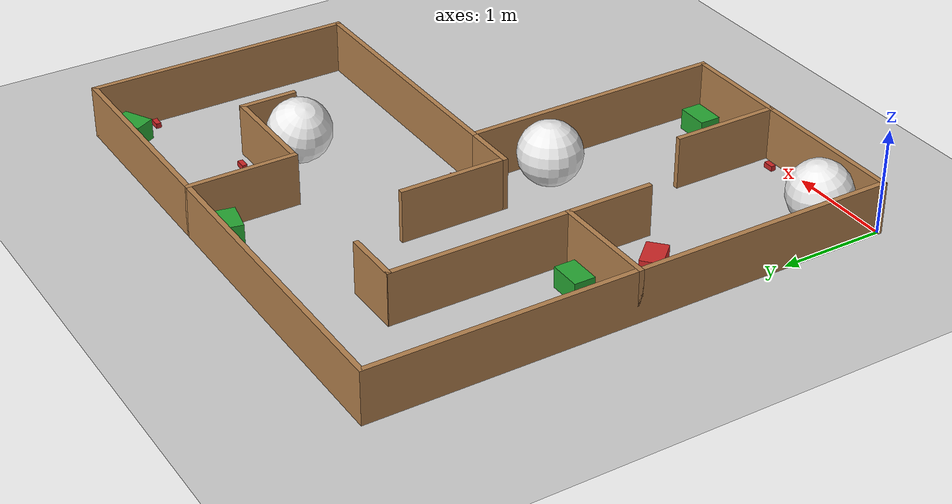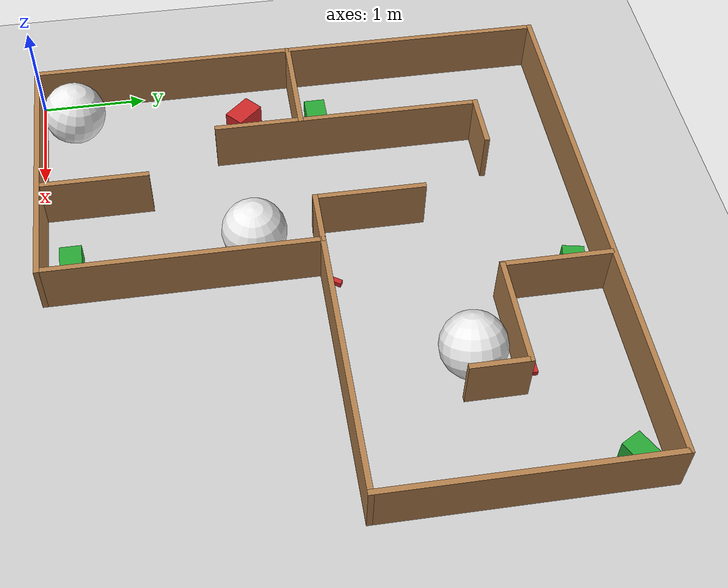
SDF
<sdf version="1.6">
 <world name="default">
  <light name="sun" type="directional">
   <pose>0 0 10 0 -0 0</pose>
   <diffuse>0.8 0.8 0.8 1</diffuse>
   <specular>0.2 0.2 0.2 1</specular>
   <attenuation>
    <range>1000</range>
    <constant>0.9</constant>
    <linear>0.01</linear>
    <quadratic>0.001</quadratic>
   </attenuation>
   <direction>-0.5 0.1 -0.9</direction>
  </light>
  <model name="ground_plane">
   <static>1</static>
   <link name="link">
    <collision name="collision">
     <geometry><plane><normal>0 0 1</normal><size>100 100</size></plane></geometry>
     <surface>
      <contact><collide_bitmask>65535</collide_bitmask></contact>
      <friction><ode><mu>100</mu><mu2>50</mu2></ode></friction>
     </surface>
    </collision>
    <visual name="visual">
     <cast_shadows>0</cast_shadows>
     <geometry><plane><normal>0 0 1</normal><size>100 100</size></plane></geometry>
     <material>
      <script><uri>file://media/materials/scripts/gazebo.material</uri><name>Gazebo/Grey</name></script>
     </material>
    </visual>
   </link>
  </model>
  <gravity>0 0 -9.8</gravity>
  <magnetic_field>6e-06 2.3e-05 -4.2e-05</magnetic_field>
  <atmosphere type="adiabatic"/>
  <physics name="default_physics" default="0" type="ode">
   <max_step_size>0.001</max_step_size>
   <real_time_factor>1</real_time_factor>
   <real_time_update_rate>1000</real_time_update_rate>
  </physics>
  <scene><ambient>0.4 0.4 0.4 1</ambient><background>0.7 0.7 0.7 1</background><shadows>1</shadows></scene>
  <audio><device>default</device></audio>
  <spherical_coordinates>
   <surface_model>EARTH_WGS84</surface_model>
   <latitude_deg>0</latitude_deg>
   <longitude_deg>0</longitude_deg>
   <elevation>0</elevation>
   <heading_deg>0</heading_deg>
  </spherical_coordinates>
  <model name="ar_group_project_2">
   <link name="Wall_0">
    <pose>-2.5 0 0 0 -0 1.5708</pose>
    <visual name="Wall_0_Visual">
     <pose>0 0 0.25 0 -0 0</pose>
     <geometry><box><size>5.05 0.05 0.5</size></box></geometry>
     <material>
      <script><uri>file://media/materials/scripts/gazebo.material</uri><name>Gazebo/Wood</name></script>
      <ambient>1 1 1 1</ambient>
     </material>
     <meta><layer>0</layer></meta>
    </visual>
    <collision name="Wall_0_Collision">
     <pose>0 0 0.25 0 -0 0</pose>
     <geometry><box><size>5.05 0.05 0.5</size></box></geometry>
     <surface>
      <friction>
       <ode><mu>1</mu><mu2>1</mu2><fdir1>0 0 0</fdir1><slip1>0</slip1><slip2>0</slip2></ode>
       <torsional>
        <coefficient>1</coefficient>
        <patch_radius>0</patch_radius>
        <surface_radius>0</surface_radius>
        <use_patch_radius>1</use_patch_radius>
        <ode><slip>0</slip></ode>
       </torsional>
      </friction>
      <bounce><restitution_coefficient>0</restitution_coefficient><threshold>1e+06</threshold></bounce>
      <contact>
       <collide_without_contact>0</collide_without_contact>
       <collide_without_contact_bitmask>1</collide_without_contact_bitmask>
       <collide_bitmask>1</collide_bitmask>
       <ode>
        <soft_cfm>0</soft_cfm>
        <soft_erp>0.2</soft_erp>
        <kp>1e+13</kp>
        <kd>1</kd>
        <max_vel>0.01</max_vel>
        <min_depth>0</min_depth>
       </ode>
       <bullet>
        <split_impulse>1</split_impulse>
        <split_impulse_penetration_threshold>-0.01</split_impulse_penetration_threshold>
        <soft_cfm>0</soft_cfm>
        <soft_erp>0.2</soft_erp>
        <kp>1e+13</kp>
        <kd>1</kd>
       </bullet>
      </contact>
     </surface>
    </collision>
   </link>
   <link name="Wall_10">
    <pose>0 -1.25 0 0 0 -1.5708</pose>
    <visual name="Wall_10_Visual">
     <pose>0 0 0.25 0 -0 0</pose>
     <geometry><box><size>2.55 0.05 0.5</size></box></geometry>
     <material>
      <script><uri>file://media/materials/scripts/gazebo.material</uri><name>Gazebo/Wood</name></script>
      <ambient>1 1 1 1</ambient>
     </material>
     <meta><layer>0</layer></meta>
    </visual>
    <collision name="Wall_10_Collision">
     <pose>0 0 0.25 0 -0 0</pose>
     <geometry><box><size>2.55 0.05 0.5</size></box></geometry>
     <surface>
      <friction>
       <ode><mu>1</mu><mu2>1</mu2><fdir1>0 0 0</fdir1><slip1>0</slip1><slip2>0</slip2></ode>
       <torsional>
        <coefficient>1</coefficient>
        <patch_radius>0</patch_radius>
        <surface_radius>0</surface_radius>
        <use_patch_radius>1</use_patch_radius>
        <ode><slip>0</slip></ode>
       </torsional>
      </friction>
      <bounce><restitution_coefficient>0</restitution_coefficient><threshold>1e+06</threshold></bounce>
      <contact>
       <collide_without_contact>0</collide_without_contact>
       <collide_without_contact_bitmask>1</collide_without_contact_bitmask>
       <collide_bitmask>1</collide_bitmask>
       <ode>
        <soft_cfm>0</soft_cfm>
        <soft_erp>0.2</soft_erp>
        <kp>1e+13</kp>
        <kd>1</kd>
        <max_vel>0.01</max_vel>
        <min_depth>0</min_depth>
       </ode>
       <bullet>
        <split_impulse>1</split_impulse>
        <split_impulse_penetration_threshold>-0.01</split_impulse_penetration_threshold>
        <soft_cfm>0</soft_cfm>
        <soft_erp>0.2</soft_erp>
        <kp>1e+13</kp>
        <kd>1</kd>
       </bullet>
      </contact>
     </surface>
    </collision>
   </link>
   <link name="Wall_13">
    <pose>-1.25 -2.5 0 0 -0 3.14159</pose>
    <visual name="Wall_13_Visual">
     <pose>0 0 0.25 0 -0 0</pose>
     <geometry><box><size>2.55 0.05 0.5</size></box></geometry>
     <material>
      <script><uri>file://media/materials/scripts/gazebo.material</uri><name>Gazebo/Wood</name></script>
      <ambient>1 1 1 1</ambient>
     </material>
     <meta><layer>0</layer></meta>
    </visual>
    <collision name="Wall_13_Collision">
     <pose>0 0 0.25 0 -0 0</pose>
     <geometry><box><size>2.55 0.05 0.5</size></box></geometry>
     <surface>
      <friction>
       <ode><mu>1</mu><mu2>1</mu2><fdir1>0 0 0</fdir1><slip1>0</slip1><slip2>0</slip2></ode>
       <torsional>
        <coefficient>1</coefficient>
        <patch_radius>0</patch_radius>
        <surface_radius>0</surface_radius>
        <use_patch_radius>1</use_patch_radius>
        <ode><slip>0</slip></ode>
       </torsional>
      </friction>
      <bounce><restitution_coefficient>0</restitution_coefficient><threshold>1e+06</threshold></bounce>
      <contact>
       <collide_without_contact>0</collide_without_contact>
       <collide_without_contact_bitmask>1</collide_without_contact_bitmask>
       <collide_bitmask>1</collide_bitmask>
       <ode>
        <soft_cfm>0</soft_cfm>
        <soft_erp>0.2</soft_erp>
        <kp>1e+13</kp>
        <kd>1</kd>
        <max_vel>0.01</max_vel>
        <min_depth>0</min_depth>
       </ode>
       <bullet>
        <split_impulse>1</split_impulse>
        <split_impulse_penetration_threshold>-0.01</split_impulse_penetration_threshold>
        <soft_cfm>0</soft_cfm>
        <soft_erp>0.2</soft_erp>
        <kp>1e+13</kp>
        <kd>1</kd>
       </bullet>
      </contact>
     </surface>
    </collision>
   </link>
   <link name="Wall_15">
    <pose>-2 0 0 0 -0 0</pose>
    <visual name="Wall_15_Visual">
     <pose>0 0 0.25 0 -0 0</pose>
     <geometry><box><size>1.05 0.05 0.5</size></box></geometry>
     <material>
      <script><uri>file://media/materials/scripts/gazebo.material</uri><name>Gazebo/Wood</name></script>
      <ambient>1 1 1 1</ambient>
     </material>
     <meta><layer>0</layer></meta>
    </visual>
    <collision name="Wall_15_Collision">
     <pose>0 0 0.25 0 -0 0</pose>
     <geometry><box><size>1.05 0.05 0.5</size></box></geometry>
     <surface>
      <friction>
       <ode><mu>1</mu><mu2>1</mu2><fdir1>0 0 0</fdir1><slip1>0</slip1><slip2>0</slip2></ode>
       <torsional>
        <coefficient>1</coefficient>
        <patch_radius>0</patch_radius>
        <surface_radius>0</surface_radius>
        <use_patch_radius>1</use_patch_radius>
        <ode><slip>0</slip></ode>
       </torsional>
      </friction>
      <bounce><restitution_coefficient>0</restitution_coefficient><threshold>1e+06</threshold></bounce>
      <contact>
       <collide_without_contact>0</collide_without_contact>
       <collide_without_contact_bitmask>1</collide_without_contact_bitmask>
       <collide_bitmask>1</collide_bitmask>
       <ode>
        <soft_cfm>0</soft_cfm>
        <soft_erp>0.2</soft_erp>
        <kp>1e+13</kp>
        <kd>1</kd>
        <max_vel>0.01</max_vel>
        <min_depth>0</min_depth>
       </ode>
       <bullet>
        <split_impulse>1</split_impulse>
        <split_impulse_penetration_threshold>-0.01</split_impulse_penetration_threshold>
        <soft_cfm>0</soft_cfm>
        <soft_erp>0.2</soft_erp>
        <kp>1e+13</kp>
        <kd>1</kd>
       </bullet>
      </contact>
     </surface>
    </collision>
   </link>
   <link name="Wall_17">
    <pose>-1.5 0.450102 0 0 -0 1.5708</pose>
    <inertial>
     <mass>1</mass>
     <inertia><ixx>1</ixx><ixy>0</ixy><ixz>0</ixz><iyy>1</iyy><iyz>0</iyz><izz>1</izz></inertia>
    </inertial>
    <visual name="Wall_17_Visual">
     <pose>0 0 0.25 0 -0 0</pose>
     <geometry><box><size>2.55 0.05 0.5</size></box></geometry>
     <material>
      <script><uri>file://media/materials/scripts/gazebo.material</uri><name>Gazebo/Wood</name></script>
      <ambient>1 1 1 1</ambient>
      <shader type="vertex"><normal_map>__default__</normal_map></shader>
     </material>
     <meta><layer>0</layer></meta>
    </visual>
    <collision name="Wall_17_Collision">
     <pose>0 0 0.25 0 -0 0</pose>
     <geometry><box><size>2.55 0.05 0.5</size></box></geometry>
     <surface>
      <friction>
       <ode><mu>1</mu><mu2>1</mu2><fdir1>0 0 0</fdir1><slip1>0</slip1><slip2>0</slip2></ode>
       <torsional>
        <coefficient>1</coefficient>
        <patch_radius>0</patch_radius>
        <surface_radius>0</surface_radius>
        <use_patch_radius>1</use_patch_radius>
        <ode><slip>0</slip></ode>
       </torsional>
      </friction>
      <bounce><restitution_coefficient>0</restitution_coefficient><threshold>1e+06</threshold></bounce>
      <contact>
       <collide_without_contact>0</collide_without_contact>
       <collide_without_contact_bitmask>1</collide_without_contact_bitmask>
       <collide_bitmask>1</collide_bitmask>
       <ode>
        <soft_cfm>0</soft_cfm>
        <soft_erp>0.2</soft_erp>
        <kp>1e+13</kp>
        <kd>1</kd>
        <max_vel>0.01</max_vel>
        <min_depth>0</min_depth>
       </ode>
       <bullet>
        <split_impulse>1</split_impulse>
        <split_impulse_penetration_threshold>-0.01</split_impulse_penetration_threshold>
        <soft_cfm>0</soft_cfm>
        <soft_erp>0.2</soft_erp>
        <kp>1e+13</kp>
        <kd>1</kd>
       </bullet>
      </contact>
     </surface>
    </collision>
   </link>
   <link name="Wall_19">
    <pose>-1.25 1.70667 0 0 -0 0</pose>
    <visual name="Wall_19_Visual">
     <pose>0 0 0.25 0 -0 0</pose>
     <geometry><box><size>0.55 0.05 0.5</size></box></geometry>
     <material>
      <script><uri>file://media/materials/scripts/gazebo.material</uri><name>Gazebo/Wood</name></script>
      <ambient>1 1 1 1</ambient>
     </material>
     <meta><layer>0</layer></meta>
    </visual>
    <collision name="Wall_19_Collision">
     <pose>0 0 0.25 0 -0 0</pose>
     <geometry><box><size>0.55 0.05 0.5</size></box></geometry>
     <surface>
      <friction>
       <ode><mu>1</mu><mu2>1</mu2><fdir1>0 0 0</fdir1><slip1>0</slip1><slip2>0</slip2></ode>
       <torsional>
        <coefficient>1</coefficient>
        <patch_radius>0</patch_radius>
        <surface_radius>0</surface_radius>
        <use_patch_radius>1</use_patch_radius>
        <ode><slip>0</slip></ode>
       </torsional>
      </friction>
      <bounce><restitution_coefficient>0</restitution_coefficient><threshold>1e+06</threshold></bounce>
      <contact>
       <collide_without_contact>0</collide_without_contact>
       <collide_without_contact_bitmask>1</collide_without_contact_bitmask>
       <collide_bitmask>1</collide_bitmask>
       <ode>
        <soft_cfm>0</soft_cfm>
        <soft_erp>0.2</soft_erp>
        <kp>1e+13</kp>
        <kd>1</kd>
        <max_vel>0.01</max_vel>
        <min_depth>0</min_depth>
       </ode>
       <bullet>
        <split_impulse>1</split_impulse>
        <split_impulse_penetration_threshold>-0.01</split_impulse_penetration_threshold>
        <soft_cfm>0</soft_cfm>
        <soft_erp>0.2</soft_erp>
        <kp>1e+13</kp>
        <kd>1</kd>
       </bullet>
      </contact>
     </surface>
    </collision>
   </link>
   <link name="Wall_21">
    <pose>0.5 2 0 0 0 -1.5708</pose>
    <visual name="Wall_21_Visual">
     <pose>0 0 0.25 0 -0 0</pose>
     <geometry><box><size>1.05 0.05 0.5</size></box></geometry>
     <material>
      <script><uri>file://media/materials/scripts/gazebo.material</uri><name>Gazebo/Wood</name></script>
      <ambient>1 1 1 1</ambient>
     </material>
     <meta><layer>0</layer></meta>
    </visual>
    <collision name="Wall_21_Collision">
     <pose>0 0 0.25 0 -0 0</pose>
     <geometry><box><size>1.05 0.05 0.5</size></box></geometry>
     <surface>
      <friction>
       <ode><mu>1</mu><mu2>1</mu2><fdir1>0 0 0</fdir1><slip1>0</slip1><slip2>0</slip2></ode>
       <torsional>
        <coefficient>1</coefficient>
        <patch_radius>0</patch_radius>
        <surface_radius>0</surface_radius>
        <use_patch_radius>1</use_patch_radius>
        <ode><slip>0</slip></ode>
       </torsional>
      </friction>
      <bounce><restitution_coefficient>0</restitution_coefficient><threshold>1e+06</threshold></bounce>
      <contact>
       <collide_without_contact>0</collide_without_contact>
       <collide_without_contact_bitmask>1</collide_without_contact_bitmask>
       <collide_bitmask>1</collide_bitmask>
       <ode>
        <soft_cfm>0</soft_cfm>
        <soft_erp>0.2</soft_erp>
        <kp>1e+13</kp>
        <kd>1</kd>
        <max_vel>0.01</max_vel>
        <min_depth>0</min_depth>
       </ode>
       <bullet>
        <split_impulse>1</split_impulse>
        <split_impulse_penetration_threshold>-0.01</split_impulse_penetration_threshold>
        <soft_cfm>0</soft_cfm>
        <soft_erp>0.2</soft_erp>
        <kp>1e+13</kp>
        <kd>1</kd>
       </bullet>
      </contact>
     </surface>
    </collision>
   </link>
   <link name="Wall_22">
    <pose>1 1.5 0 0 -0 0</pose>
    <visual name="Wall_22_Visual">
     <pose>0 0 0.25 0 -0 0</pose>
     <geometry><box><size>1.05 0.05 0.5</size></box></geometry>
     <material>
      <script><uri>file://media/materials/scripts/gazebo.material</uri><name>Gazebo/Wood</name></script>
      <ambient>1 1 1 1</ambient>
     </material>
     <meta><layer>0</layer></meta>
    </visual>
    <collision name="Wall_22_Collision">
     <pose>0 0 0.25 0 -0 0</pose>
     <geometry><box><size>1.05 0.05 0.5</size></box></geometry>
     <surface>
      <friction>
       <ode><mu>1</mu><mu2>1</mu2><fdir1>0 0 0</fdir1><slip1>0</slip1><slip2>0</slip2></ode>
       <torsional>
        <coefficient>1</coefficient>
        <patch_radius>0</patch_radius>
        <surface_radius>0</surface_radius>
        <use_patch_radius>1</use_patch_radius>
        <ode><slip>0</slip></ode>
       </torsional>
      </friction>
      <bounce><restitution_coefficient>0</restitution_coefficient><threshold>1e+06</threshold></bounce>
      <contact>
       <collide_without_contact>0</collide_without_contact>
       <collide_without_contact_bitmask>1</collide_without_contact_bitmask>
       <collide_bitmask>1</collide_bitmask>
       <ode>
        <soft_cfm>0</soft_cfm>
        <soft_erp>0.2</soft_erp>
        <kp>1e+13</kp>
        <kd>1</kd>
        <max_vel>0.01</max_vel>
        <min_depth>0</min_depth>
       </ode>
       <bullet>
        <split_impulse>1</split_impulse>
        <split_impulse_penetration_threshold>-0.01</split_impulse_penetration_threshold>
        <soft_cfm>0</soft_cfm>
        <soft_erp>0.2</soft_erp>
        <kp>1e+13</kp>
        <kd>1</kd>
       </bullet>
      </contact>
     </surface>
    </collision>
   </link>
   <link name="Wall_23">
    <pose>1.5 1.25 0 0 0 -1.5708</pose>
    <visual name="Wall_23_Visual">
     <pose>0 0 0.25 0 -0 0</pose>
     <geometry><box><size>0.55 0.05 0.5</size></box></geometry>
     <material>
      <script><uri>file://media/materials/scripts/gazebo.material</uri><name>Gazebo/Wood</name></script>
      <ambient>1 1 1 1</ambient>
     </material>
     <meta><layer>0</layer></meta>
    </visual>
    <collision name="Wall_23_Collision">
     <pose>0 0 0.25 0 -0 0</pose>
     <geometry><box><size>0.55 0.05 0.5</size></box></geometry>
     <surface>
      <friction>
       <ode><mu>1</mu><mu2>1</mu2><fdir1>0 0 0</fdir1><slip1>0</slip1><slip2>0</slip2></ode>
       <torsional>
        <coefficient>1</coefficient>
        <patch_radius>0</patch_radius>
        <surface_radius>0</surface_radius>
        <use_patch_radius>1</use_patch_radius>
        <ode><slip>0</slip></ode>
       </torsional>
      </friction>
      <bounce><restitution_coefficient>0</restitution_coefficient><threshold>1e+06</threshold></bounce>
      <contact>
       <collide_without_contact>0</collide_without_contact>
       <collide_without_contact_bitmask>1</collide_without_contact_bitmask>
       <collide_bitmask>1</collide_bitmask>
       <ode>
        <soft_cfm>0</soft_cfm>
        <soft_erp>0.2</soft_erp>
        <kp>1e+13</kp>
        <kd>1</kd>
        <max_vel>0.01</max_vel>
        <min_depth>0</min_depth>
       </ode>
       <bullet>
        <split_impulse>1</split_impulse>
        <split_impulse_penetration_threshold>-0.01</split_impulse_penetration_threshold>
        <soft_cfm>0</soft_cfm>
        <soft_erp>0.2</soft_erp>
        <kp>1e+13</kp>
        <kd>1</kd>
       </bullet>
      </contact>
     </surface>
    </collision>
   </link>
   <link name="Wall_25">
    <pose>-1 -2 0 0 -0 1.5708</pose>
    <visual name="Wall_25_Visual">
     <pose>0 0 0.25 0 -0 0</pose>
     <geometry><box><size>1.05 0.05 0.5</size></box></geometry>
     <material>
      <script><uri>file://media/materials/scripts/gazebo.material</uri><name>Gazebo/Wood</name></script>
      <ambient>1 1 1 1</ambient>
     </material>
     <meta><layer>0</layer></meta>
    </visual>
    <collision name="Wall_25_Collision">
     <pose>0 0 0.25 0 -0 0</pose>
     <geometry><box><size>1.05 0.05 0.5</size></box></geometry>
     <surface>
      <friction>
       <ode><mu>1</mu><mu2>1</mu2><fdir1>0 0 0</fdir1><slip1>0</slip1><slip2>0</slip2></ode>
       <torsional>
        <coefficient>1</coefficient>
        <patch_radius>0</patch_radius>
        <surface_radius>0</surface_radius>
        <use_patch_radius>1</use_patch_radius>
        <ode><slip>0</slip></ode>
       </torsional>
      </friction>
      <bounce><restitution_coefficient>0</restitution_coefficient><threshold>1e+06</threshold></bounce>
      <contact>
       <collide_without_contact>0</collide_without_contact>
       <collide_without_contact_bitmask>1</collide_without_contact_bitmask>
       <collide_bitmask>1</collide_bitmask>
       <ode>
        <soft_cfm>0</soft_cfm>
        <soft_erp>0.2</soft_erp>
        <kp>1e+13</kp>
        <kd>1</kd>
        <max_vel>0.01</max_vel>
        <min_depth>0</min_depth>
       </ode>
       <bullet>
        <split_impulse>1</split_impulse>
        <split_impulse_penetration_threshold>-0.01</split_impulse_penetration_threshold>
        <soft_cfm>0</soft_cfm>
        <soft_erp>0.2</soft_erp>
        <kp>1e+13</kp>
        <kd>1</kd>
       </bullet>
      </contact>
     </surface>
    </collision>
   </link>
   <link name="Wall_27">
    <pose>-0.25 0 0 0 -0 3.14159</pose>
    <visual name="Wall_27_Visual">
     <pose>0 0 0.25 0 -0 0</pose>
     <geometry><box><size>0.55 0.05 0.5</size></box></geometry>
     <material>
      <script><uri>file://media/materials/scripts/gazebo.material</uri><name>Gazebo/Wood</name></script>
      <ambient>1 1 1 1</ambient>
     </material>
     <meta><layer>0</layer></meta>
    </visual>
    <collision name="Wall_27_Collision">
     <pose>0 0 0.25 0 -0 0</pose>
     <geometry><box><size>0.55 0.05 0.5</size></box></geometry>
     <surface>
      <friction>
       <ode><mu>1</mu><mu2>1</mu2><fdir1>0 0 0</fdir1><slip1>0</slip1><slip2>0</slip2></ode>
       <torsional>
        <coefficient>1</coefficient>
        <patch_radius>0</patch_radius>
        <surface_radius>0</surface_radius>
        <use_patch_radius>1</use_patch_radius>
        <ode><slip>0</slip></ode>
       </torsional>
      </friction>
      <bounce><restitution_coefficient>0</restitution_coefficient><threshold>1e+06</threshold></bounce>
      <contact>
       <collide_without_contact>0</collide_without_contact>
       <collide_without_contact_bitmask>1</collide_without_contact_bitmask>
       <collide_bitmask>1</collide_bitmask>
       <ode>
        <soft_cfm>0</soft_cfm>
        <soft_erp>0.2</soft_erp>
        <kp>1e+13</kp>
        <kd>1</kd>
        <max_vel>0.01</max_vel>
        <min_depth>0</min_depth>
       </ode>
       <bullet>
        <split_impulse>1</split_impulse>
        <split_impulse_penetration_threshold>-0.01</split_impulse_penetration_threshold>
        <soft_cfm>0</soft_cfm>
        <soft_erp>0.2</soft_erp>
        <kp>1e+13</kp>
        <kd>1</kd>
       </bullet>
      </contact>
     </surface>
    </collision>
   </link>
   <link name="Wall_28">
    <pose>-0.5 0.5 0 0 -0 1.5708</pose>
    <visual name="Wall_28_Visual">
     <pose>0 0 0.25 0 -0 0</pose>
     <geometry><box><size>1.05 0.05 0.5</size></box></geometry>
     <material>
      <script><uri>file://media/materials/scripts/gazebo.material</uri><name>Gazebo/Wood</name></script>
      <ambient>1 1 1 1</ambient>
     </material>
     <meta><layer>0</layer></meta>
    </visual>
    <collision name="Wall_28_Collision">
     <pose>0 0 0.25 0 -0 0</pose>
     <geometry><box><size>1.05 0.05 0.5</size></box></geometry>
     <surface>
      <friction>
       <ode><mu>1</mu><mu2>1</mu2><fdir1>0 0 0</fdir1><slip1>0</slip1><slip2>0</slip2></ode>
       <torsional>
        <coefficient>1</coefficient>
        <patch_radius>0</patch_radius>
        <surface_radius>0</surface_radius>
        <use_patch_radius>1</use_patch_radius>
        <ode><slip>0</slip></ode>
       </torsional>
      </friction>
      <bounce><restitution_coefficient>0</restitution_coefficient><threshold>1e+06</threshold></bounce>
      <contact>
       <collide_without_contact>0</collide_without_contact>
       <collide_without_contact_bitmask>1</collide_without_contact_bitmask>
       <collide_bitmask>1</collide_bitmask>
       <ode>
        <soft_cfm>0</soft_cfm>
        <soft_erp>0.2</soft_erp>
        <kp>1e+13</kp>
        <kd>1</kd>
        <max_vel>0.01</max_vel>
        <min_depth>0</min_depth>
       </ode>
       <bullet>
        <split_impulse>1</split_impulse>
        <split_impulse_penetration_threshold>-0.01</split_impulse_penetration_threshold>
        <soft_cfm>0</soft_cfm>
        <soft_erp>0.2</soft_erp>
        <kp>1e+13</kp>
        <kd>1</kd>
       </bullet>
      </contact>
     </surface>
    </collision>
   </link>
   <link name="Wall_4">
    <pose>0 2.5 0 0 -0 0</pose>
    <visual name="Wall_4_Visual">
     <pose>0 0 0.25 0 -0 0</pose>
     <geometry><box><size>5.05 0.05 0.5</size></box></geometry>
     <material>
      <script><uri>file://media/materials/scripts/gazebo.material</uri><name>Gazebo/Wood</name></script>
      <ambient>1 1 1 1</ambient>
     </material>
     <meta><layer>0</layer></meta>
    </visual>
    <collision name="Wall_4_Collision">
     <pose>0 0 0.25 0 -0 0</pose>
     <geometry><box><size>5.05 0.05 0.5</size></box></geometry>
     <surface>
      <friction>
       <ode><mu>1</mu><mu2>1</mu2><fdir1>0 0 0</fdir1><slip1>0</slip1><slip2>0</slip2></ode>
       <torsional>
        <coefficient>1</coefficient>
        <patch_radius>0</patch_radius>
        <surface_radius>0</surface_radius>
        <use_patch_radius>1</use_patch_radius>
        <ode><slip>0</slip></ode>
       </torsional>
      </friction>
      <bounce><restitution_coefficient>0</restitution_coefficient><threshold>1e+06</threshold></bounce>
      <contact>
       <collide_without_contact>0</collide_without_contact>
       <collide_without_contact_bitmask>1</collide_without_contact_bitmask>
       <collide_bitmask>1</collide_bitmask>
       <ode>
        <soft_cfm>0</soft_cfm>
        <soft_erp>0.2</soft_erp>
        <kp>1e+13</kp>
        <kd>1</kd>
        <max_vel>0.01</max_vel>
        <min_depth>0</min_depth>
       </ode>
       <bullet>
        <split_impulse>1</split_impulse>
        <split_impulse_penetration_threshold>-0.01</split_impulse_penetration_threshold>
        <soft_cfm>0</soft_cfm>
        <soft_erp>0.2</soft_erp>
        <kp>1e+13</kp>
        <kd>1</kd>
       </bullet>
      </contact>
     </surface>
    </collision>
   </link>
   <link name="Wall_6">
    <pose>2.5 1.25 0 0 0 -1.5708</pose>
    <visual name="Wall_6_Visual">
     <pose>0 0 0.25 0 -0 0</pose>
     <geometry><box><size>2.55 0.05 0.5</size></box></geometry>
     <material>
      <script><uri>file://media/materials/scripts/gazebo.material</uri><name>Gazebo/Wood</name></script>
      <ambient>1 1 1 1</ambient>
     </material>
     <meta><layer>0</layer></meta>
    </visual>
    <collision name="Wall_6_Collision">
     <pose>0 0 0.25 0 -0 0</pose>
     <geometry><box><size>2.55 0.05 0.5</size></box></geometry>
     <surface>
      <friction>
       <ode><mu>1</mu><mu2>1</mu2><fdir1>0 0 0</fdir1><slip1>0</slip1><slip2>0</slip2></ode>
       <torsional>
        <coefficient>1</coefficient>
        <patch_radius>0</patch_radius>
        <surface_radius>0</surface_radius>
        <use_patch_radius>1</use_patch_radius>
        <ode><slip>0</slip></ode>
       </torsional>
      </friction>
      <bounce><restitution_coefficient>0</restitution_coefficient><threshold>1e+06</threshold></bounce>
      <contact>
       <collide_without_contact>0</collide_without_contact>
       <collide_without_contact_bitmask>1</collide_without_contact_bitmask>
       <collide_bitmask>1</collide_bitmask>
       <ode>
        <soft_cfm>0</soft_cfm>
        <soft_erp>0.2</soft_erp>
        <kp>1e+13</kp>
        <kd>1</kd>
        <max_vel>0.01</max_vel>
        <min_depth>0</min_depth>
       </ode>
       <bullet>
        <split_impulse>1</split_impulse>
        <split_impulse_penetration_threshold>-0.01</split_impulse_penetration_threshold>
        <soft_cfm>0</soft_cfm>
        <soft_erp>0.2</soft_erp>
        <kp>1e+13</kp>
        <kd>1</kd>
       </bullet>
      </contact>
     </surface>
    </collision>
   </link>
   <link name="Wall_8">
    <pose>1.25 0 0 0 -0 3.14159</pose>
    <visual name="Wall_8_Visual">
     <pose>0 0 0.25 0 -0 0</pose>
     <geometry><box><size>2.55 0.05 0.5</size></box></geometry>
     <material>
      <script><uri>file://media/materials/scripts/gazebo.material</uri><name>Gazebo/Wood</name></script>
      <ambient>1 1 1 1</ambient>
     </material>
     <meta><layer>0</layer></meta>
    </visual>
    <collision name="Wall_8_Collision">
     <pose>0 0 0.25 0 -0 0</pose>
     <geometry><box><size>2.55 0.05 0.5</size></box></geometry>
     <surface>
      <friction>
       <ode><mu>1</mu><mu2>1</mu2><fdir1>0 0 0</fdir1><slip1>0</slip1><slip2>0</slip2></ode>
       <torsional>
        <coefficient>1</coefficient>
        <patch_radius>0</patch_radius>
        <surface_radius>0</surface_radius>
        <use_patch_radius>1</use_patch_radius>
        <ode><slip>0</slip></ode>
       </torsional>
      </friction>
      <bounce><restitution_coefficient>0</restitution_coefficient><threshold>1e+06</threshold></bounce>
      <contact>
       <collide_without_contact>0</collide_without_contact>
       <collide_without_contact_bitmask>1</collide_without_contact_bitmask>
       <collide_bitmask>1</collide_bitmask>
       <ode>
        <soft_cfm>0</soft_cfm>
        <soft_erp>0.2</soft_erp>
        <kp>1e+13</kp>
        <kd>1</kd>
        <max_vel>0.01</max_vel>
        <min_depth>0</min_depth>
       </ode>
       <bullet>
        <split_impulse>1</split_impulse>
        <split_impulse_penetration_threshold>-0.01</split_impulse_penetration_threshold>
        <soft_cfm>0</soft_cfm>
        <soft_erp>0.2</soft_erp>
        <kp>1e+13</kp>
        <kd>1</kd>
       </bullet>
      </contact>
     </surface>
    </collision>
   </link>
   <static>1</static>
   <pose>2.5 2.5 0 0 -0 0</pose>
  </model>
  <model name="brick">
   <link name="link">
    <inertial>
     <mass>1</mass>
     <inertia>
      <ixx>0.166667</ixx>
      <ixy>0</ixy>
      <ixz>0</ixz>
      <iyy>0.166667</iyy>
      <iyz>0</iyz>
      <izz>0.166667</izz>
     </inertia>
    </inertial>
    <visual name="visual">
     <geometry><box><size>0.3 0.2 0.2</size></box></geometry>
     <material>
      <script><name>Gazebo/Red</name><uri>file://media/materials/scripts/gazebo.material</uri></script>
     </material>
    </visual>
    <collision name="collision">
     <geometry><box><size>0.3 0.2 0.2</size></box></geometry>
     <surface>
      <friction>
       <ode><mu>1</mu><mu2>1</mu2><fdir1>0 0 0</fdir1><slip1>0</slip1><slip2>0</slip2></ode>
       <torsional>
        <coefficient>1</coefficient>
        <patch_radius>0</patch_radius>
        <surface_radius>0</surface_radius>
        <use_patch_radius>1</use_patch_radius>
        <ode><slip>0</slip></ode>
       </torsional>
      </friction>
      <bounce><restitution_coefficient>0</restitution_coefficient><threshold>1e+06</threshold></bounce>
      <contact>
       <collide_without_contact>0</collide_without_contact>
       <collide_without_contact_bitmask>1</collide_without_contact_bitmask>
       <collide_bitmask>1</collide_bitmask>
       <ode>
        <soft_cfm>0</soft_cfm>
        <soft_erp>0.2</soft_erp>
        <kp>1e+13</kp>
        <kd>1</kd>
        <max_vel>0.01</max_vel>
        <min_depth>0</min_depth>
       </ode>
       <bullet>
        <split_impulse>1</split_impulse>
        <split_impulse_penetration_threshold>-0.01</split_impulse_penetration_threshold>
        <soft_cfm>0</soft_cfm>
        <soft_erp>0.2</soft_erp>
        <kp>1e+13</kp>
        <kd>1</kd>
       </bullet>
      </contact>
     </surface>
    </collision>
   </link>
   <static>0</static>
   <pose>0.497482 1.98674 0.099999 4e-06 -6e-06 -0.834343</pose>
  </model>
  <model name="brick_decoy">
   <link name="link">
    <inertial>
     <mass>1</mass>
     <inertia>
      <ixx>0.166667</ixx>
      <ixy>0</ixy>
      <ixz>0</ixz>
      <iyy>0.166667</iyy>
      <iyz>0</iyz>
      <izz>0.166667</izz>
     </inertia>
    </inertial>
    <visual name="visual">
     <geometry><box><size>0.3 0.2 0.2</size></box></geometry>
     <material>
      <script><name>Gazebo/Green</name><uri>file://media/materials/scripts/gazebo.material</uri></script>
     </material>
    </visual>
    <collision name="collision">
     <geometry><box><size>0.3 0.2 0.2</size></box></geometry>
     <surface>
      <friction>
       <ode><mu>1</mu><mu2>1</mu2><fdir1>0 0 0</fdir1><slip1>0</slip1><slip2>0</slip2></ode>
       <torsional>
        <coefficient>1</coefficient>
        <patch_radius>0</patch_radius>
        <surface_radius>0</surface_radius>
        <use_patch_radius>1</use_patch_radius>
        <ode><slip>0</slip></ode>
       </torsional>
      </friction>
      <bounce><restitution_coefficient>0</restitution_coefficient><threshold>1e+06</threshold></bounce>
      <contact>
       <collide_without_contact>0</collide_without_contact>
       <collide_without_contact_bitmask>1</collide_without_contact_bitmask>
       <collide_bitmask>1</collide_bitmask>
       <ode>
        <soft_cfm>0</soft_cfm>
        <soft_erp>0.2</soft_erp>
        <kp>1e+13</kp>
        <kd>1</kd>
        <max_vel>0.01</max_vel>
        <min_depth>0</min_depth>
       </ode>
       <bullet>
        <split_impulse>1</split_impulse>
        <split_impulse_penetration_threshold>-0.01</split_impulse_penetration_threshold>
        <soft_cfm>0</soft_cfm>
        <soft_erp>0.2</soft_erp>
        <kp>1e+13</kp>
        <kd>1</kd>
       </bullet>
      </contact>
     </surface>
    </collision>
   </link>
   <static>0</static>
   <pose>2.16867 0.254295 0.1 0 -0 0</pose>
  </model>
  <model name="brick_white_sphere">
   <link name="link">
    <inertial>
     <mass>1</mass>
     <inertia>
      <ixx>0.166667</ixx>
      <ixy>0</ixy>
      <ixz>0</ixz>
      <iyy>0.166667</iyy>
      <iyz>0</iyz>
      <izz>0.166667</izz>
     </inertia>
    </inertial>
    <visual name="visual">
     <geometry><sphere><radius>0.3</radius></sphere></geometry>
     <material>
      <script><name>Gazebo/White</name><uri>file://media/materials/scripts/gazebo.material</uri></script>
     </material>
    </visual>
    <collision name="collision">
     <geometry><sphere><radius>0.3</radius></sphere></geometry>
     <surface>
      <friction>
       <ode><mu>1</mu><mu2>1</mu2><fdir1>0 0 0</fdir1><slip1>0</slip1><slip2>0</slip2></ode>
       <torsional>
        <coefficient>1</coefficient>
        <patch_radius>0</patch_radius>
        <surface_radius>0</surface_radius>
        <use_patch_radius>1</use_patch_radius>
        <ode><slip>0</slip></ode>
       </torsional>
      </friction>
      <bounce><restitution_coefficient>0</restitution_coefficient><threshold>1e+06</threshold></bounce>
      <contact>
       <collide_without_contact>0</collide_without_contact>
       <collide_without_contact_bitmask>1</collide_without_contact_bitmask>
       <collide_bitmask>1</collide_bitmask>
       <ode>
        <soft_cfm>0</soft_cfm>
        <soft_erp>0.2</soft_erp>
        <kp>1e+13</kp>
        <kd>1</kd>
        <max_vel>0.01</max_vel>
        <min_depth>0</min_depth>
       </ode>
       <bullet>
        <split_impulse>1</split_impulse>
        <split_impulse_penetration_threshold>-0.01</split_impulse_penetration_threshold>
        <soft_cfm>0</soft_cfm>
        <soft_erp>0.2</soft_erp>
        <kp>1e+13</kp>
        <kd>1</kd>
       </bullet>
      </contact>
     </surface>
    </collision>
   </link>
   <static>0</static>
   <pose>2.15433 1.92158 0.3 0 -0 0</pose>
  </model>
  <model name="brick_small">
   <link name="link">
    <inertial>
     <mass>1</mass>
     <inertia>
      <ixx>0.166667</ixx>
      <ixy>0</ixy>
      <ixz>0</ixz>
      <iyy>0.166667</iyy>
      <iyz>0</iyz>
      <izz>0.166667</izz>
     </inertia>
    </inertial>
    <visual name="visual">
     <geometry><box><size>0.1 0.05 0.05</size></box></geometry>
     <material>
      <script><name>Gazebo/Red</name><uri>file://media/materials/scripts/gazebo.material</uri></script>
     </material>
    </visual>
    <collision name="collision">
     <geometry><box><size>0.1 0.05 0.05</size></box></geometry>
     <surface>
      <friction>
       <ode><mu>1</mu><mu2>1</mu2><fdir1>0 0 0</fdir1><slip1>0</slip1><slip2>0</slip2></ode>
       <torsional>
        <coefficient>1</coefficient>
        <patch_radius>0</patch_radius>
        <surface_radius>0</surface_radius>
        <use_patch_radius>1</use_patch_radius>
        <ode><slip>0</slip></ode>
       </torsional>
      </friction>
      <bounce><restitution_coefficient>0</restitution_coefficient><threshold>1e+06</threshold></bounce>
      <contact>
       <collide_without_contact>0</collide_without_contact>
       <collide_without_contact_bitmask>1</collide_without_contact_bitmask>
       <collide_bitmask>1</collide_bitmask>
       <ode>
        <soft_cfm>0</soft_cfm>
        <soft_erp>0.2</soft_erp>
        <kp>1e+13</kp>
        <kd>1</kd>
        <max_vel>0.01</max_vel>
        <min_depth>0</min_depth>
       </ode>
       <bullet>
        <split_impulse>1</split_impulse>
        <split_impulse_penetration_threshold>-0.01</split_impulse_penetration_threshold>
        <soft_cfm>0</soft_cfm>
        <soft_erp>0.2</soft_erp>
        <kp>1e+13</kp>
        <kd>1</kd>
       </bullet>
      </contact>
     </surface>
    </collision>
   </link>
   <static>0</static>
   <pose>3.80084 4.13155 0.025001 2e-06 1.9e-05 -2e-06</pose>
  </model>
  <model name="brick_white_sphere_0">
   <link name="link">
    <inertial>
     <mass>1</mass>
     <inertia>
      <ixx>0.166667</ixx>
      <ixy>0</ixy>
      <ixz>0</ixz>
      <iyy>0.166667</iyy>
      <iyz>0</iyz>
      <izz>0.166667</izz>
     </inertia>
    </inertial>
    <visual name="visual">
     <geometry><sphere><radius>0.3</radius></sphere></geometry>
     <material>
      <script><name>Gazebo/White</name><uri>file://media/materials/scripts/gazebo.material</uri></script>
     </material>
    </visual>
    <collision name="collision">
     <geometry><sphere><radius>0.3</radius></sphere></geometry>
     <surface>
      <friction>
       <ode><mu>1</mu><mu2>1</mu2><fdir1>0 0 0</fdir1><slip1>0</slip1><slip2>0</slip2></ode>
       <torsional>
        <coefficient>1</coefficient>
        <patch_radius>0</patch_radius>
        <surface_radius>0</surface_radius>
        <use_patch_radius>1</use_patch_radius>
        <ode><slip>0</slip></ode>
       </torsional>
      </friction>
      <bounce><restitution_coefficient>0</restitution_coefficient><threshold>1e+06</threshold></bounce>
      <contact>
       <collide_without_contact>0</collide_without_contact>
       <collide_without_contact_bitmask>1</collide_without_contact_bitmask>
       <collide_bitmask>1</collide_bitmask>
       <ode>
        <soft_cfm>0</soft_cfm>
        <soft_erp>0.2</soft_erp>
        <kp>1e+13</kp>
        <kd>1</kd>
        <max_vel>0.01</max_vel>
        <min_depth>0</min_depth>
       </ode>
       <bullet>
        <split_impulse>1</split_impulse>
        <split_impulse_penetration_threshold>-0.01</split_impulse_penetration_threshold>
        <soft_cfm>0</soft_cfm>
        <soft_erp>0.2</soft_erp>
        <kp>1e+13</kp>
        <kd>1</kd>
       </bullet>
      </contact>
     </surface>
    </collision>
   </link>
   <static>0</static>
   <pose>0.397783 0.333234 0.3 -0.212896 1e-06 -0</pose>
  </model>
  <model name="brick_small_0">
   <link name="link">
    <inertial>
     <mass>1</mass>
     <inertia>
      <ixx>0.166667</ixx>
      <ixy>0</ixy>
      <ixz>0</ixz>
      <iyy>0.166667</iyy>
      <iyz>0</iyz>
      <izz>0.166667</izz>
     </inertia>
    </inertial>
    <visual name="visual">
     <geometry><box><size>0.1 0.05 0.05</size></box></geometry>
     <material>
      <script><name>Gazebo/Red</name><uri>file://media/materials/scripts/gazebo.material</uri></script>
     </material>
    </visual>
    <collision name="collision">
     <geometry><box><size>0.1 0.05 0.05</size></box></geometry>
     <surface>
      <friction>
       <ode><mu>1</mu><mu2>1</mu2><fdir1>0 0 0</fdir1><slip1>0</slip1><slip2>0</slip2></ode>
       <torsional>
        <coefficient>1</coefficient>
        <patch_radius>0</patch_radius>
        <surface_radius>0</surface_radius>
        <use_patch_radius>1</use_patch_radius>
        <ode><slip>0</slip></ode>
       </torsional>
      </friction>
      <bounce><restitution_coefficient>0</restitution_coefficient><threshold>1e+06</threshold></bounce>
      <contact>
       <collide_without_contact>0</collide_without_contact>
       <collide_without_contact_bitmask>1</collide_without_contact_bitmask>
       <collide_bitmask>1</collide_bitmask>
       <ode>
        <soft_cfm>0</soft_cfm>
        <soft_erp>0.2</soft_erp>
        <kp>1e+13</kp>
        <kd>1</kd>
        <max_vel>0.01</max_vel>
        <min_depth>0</min_depth>
       </ode>
       <bullet>
        <split_impulse>1</split_impulse>
        <split_impulse_penetration_threshold>-0.01</split_impulse_penetration_threshold>
        <soft_cfm>0</soft_cfm>
        <soft_erp>0.2</soft_erp>
        <kp>1e+13</kp>
        <kd>1</kd>
       </bullet>
      </contact>
     </surface>
    </collision>
   </link>
   <static>0</static>
   <pose>2.63249 2.60355 0.025 1e-06 -1e-05 1.00002</pose>
  </model>
  <model name="brick_decoy_0">
   <link name="link">
    <inertial>
     <mass>1</mass>
     <inertia>
      <ixx>0.166667</ixx>
      <ixy>0</ixy>
      <ixz>0</ixz>
      <iyy>0.166667</iyy>
      <iyz>0</iyz>
      <izz>0.166667</izz>
     </inertia>
    </inertial>
    <visual name="visual">
     <geometry><box><size>0.3 0.2 0.2</size></box></geometry>
     <material>
      <script><name>Gazebo/Green</name><uri>file://media/materials/scripts/gazebo.material</uri></script>
     </material>
    </visual>
    <collision name="collision">
     <geometry><box><size>0.3 0.2 0.2</size></box></geometry>
     <surface>
      <friction>
       <ode><mu>1</mu><mu2>1</mu2><fdir1>0 0 0</fdir1><slip1>0</slip1><slip2>0</slip2></ode>
       <torsional>
        <coefficient>1</coefficient>
        <patch_radius>0</patch_radius>
        <surface_radius>0</surface_radius>
        <use_patch_radius>1</use_patch_radius>
        <ode><slip>0</slip></ode>
       </torsional>
      </friction>
      <bounce><restitution_coefficient>0</restitution_coefficient><threshold>1e+06</threshold></bounce>
      <contact>
       <collide_without_contact>0</collide_without_contact>
       <collide_without_contact_bitmask>1</collide_without_contact_bitmask>
       <collide_bitmask>1</collide_bitmask>
       <ode>
        <soft_cfm>0</soft_cfm>
        <soft_erp>0.2</soft_erp>
        <kp>1e+13</kp>
        <kd>1</kd>
        <max_vel>0.01</max_vel>
        <min_depth>0</min_depth>
       </ode>
       <bullet>
        <split_impulse>1</split_impulse>
        <split_impulse_penetration_threshold>-0.01</split_impulse_penetration_threshold>
        <soft_cfm>0</soft_cfm>
        <soft_erp>0.2</soft_erp>
        <kp>1e+13</kp>
        <kd>1</kd>
       </bullet>
      </contact>
     </surface>
    </collision>
   </link>
   <static>0</static>
   <pose>4.79071 4.75743 0.099999 4e-06 -6e-06 0.499975</pose>
  </model>
  <model name="brick_decoy_1">
   <link name="link">
    <inertial>
     <mass>1</mass>
     <inertia>
      <ixx>0.166667</ixx>
      <ixy>0</ixy>
      <ixz>0</ixz>
      <iyy>0.166667</iyy>
      <iyz>0</iyz>
      <izz>0.166667</izz>
     </inertia>
    </inertial>
    <visual name="visual">
     <geometry><box><size>0.3 0.2 0.2</size></box></geometry>
     <material>
      <script><name>Gazebo/Green</name><uri>file://media/materials/scripts/gazebo.material</uri></script>
     </material>
    </visual>
    <collision name="collision">
     <geometry><box><size>0.3 0.2 0.2</size></box></geometry>
     <surface>
      <friction>
       <ode><mu>1</mu><mu2>1</mu2><fdir1>0 0 0</fdir1><slip1>0</slip1><slip2>0</slip2></ode>
       <torsional>
        <coefficient>1</coefficient>
        <patch_radius>0</patch_radius>
        <surface_radius>0</surface_radius>
        <use_patch_radius>1</use_patch_radius>
        <ode><slip>0</slip></ode>
       </torsional>
      </friction>
      <bounce><restitution_coefficient>0</restitution_coefficient><threshold>1e+06</threshold></bounce>
      <contact>
       <collide_without_contact>0</collide_without_contact>
       <collide_without_contact_bitmask>1</collide_without_contact_bitmask>
       <collide_bitmask>1</collide_bitmask>
       <ode>
        <soft_cfm>0</soft_cfm>
        <soft_erp>0.2</soft_erp>
        <kp>1e+13</kp>
        <kd>1</kd>
        <max_vel>0.01</max_vel>
        <min_depth>0</min_depth>
       </ode>
       <bullet>
        <split_impulse>1</split_impulse>
        <split_impulse_penetration_threshold>-0.01</split_impulse_penetration_threshold>
        <soft_cfm>0</soft_cfm>
        <soft_erp>0.2</soft_erp>
        <kp>1e+13</kp>
        <kd>1</kd>
       </bullet>
      </contact>
     </surface>
    </collision>
   </link>
   <static>0</static>
   <pose>2.80845 4.73892 0.1 0 0 -0.193411</pose>
  </model>
  <model name="brick_small_1">
   <link name="link">
    <inertial>
     <mass>1</mass>
     <inertia>
      <ixx>0.166667</ixx>
      <ixy>0</ixy>
      <ixz>0</ixz>
      <iyy>0.166667</iyy>
      <iyz>0</iyz>
      <izz>0.166667</izz>
     </inertia>
    </inertial>
    <visual name="visual">
     <geometry><box><size>0.1 0.05 0.05</size></box></geometry>
     <material>
      <script><name>Gazebo/Red</name><uri>file://media/materials/scripts/gazebo.material</uri></script>
     </material>
    </visual>
    <collision name="collision">
     <geometry><box><size>0.1 0.05 0.05</size></box></geometry>
     <surface>
      <friction>
       <ode><mu>1</mu><mu2>1</mu2><fdir1>0 0 0</fdir1><slip1>0</slip1><slip2>0</slip2></ode>
       <torsional>
        <coefficient>1</coefficient>
        <patch_radius>0</patch_radius>
        <surface_radius>0</surface_radius>
        <use_patch_radius>1</use_patch_radius>
        <ode><slip>0</slip></ode>
       </torsional>
      </friction>
      <bounce><restitution_coefficient>0</restitution_coefficient><threshold>1e+06</threshold></bounce>
      <contact>
       <collide_without_contact>0</collide_without_contact>
       <collide_without_contact_bitmask>1</collide_without_contact_bitmask>
       <collide_bitmask>1</collide_bitmask>
       <ode>
        <soft_cfm>0</soft_cfm>
        <soft_erp>0.2</soft_erp>
        <kp>1e+13</kp>
        <kd>1</kd>
        <max_vel>0.01</max_vel>
        <min_depth>0</min_depth>
       </ode>
       <bullet>
        <split_impulse>1</split_impulse>
        <split_impulse_penetration_threshold>-0.01</split_impulse_penetration_threshold>
        <soft_cfm>0</soft_cfm>
        <soft_erp>0.2</soft_erp>
        <kp>1e+13</kp>
        <kd>1</kd>
       </bullet>
      </contact>
     </surface>
    </collision>
   </link>
   <static>0</static>
   <pose>1.31599 0.110003 0.025001 2e-06 -1.3e-05 -1e-06</pose>
  </model>
  <model name="brick_decoy_2">
   <link name="link">
    <inertial>
     <mass>1</mass>
     <inertia>
      <ixx>0.166667</ixx>
      <ixy>0</ixy>
      <ixz>0</ixz>
      <iyy>0.166667</iyy>
      <iyz>0</iyz>
      <izz>0.166667</izz>
     </inertia>
    </inertial>
    <visual name="visual">
     <geometry><box><size>0.3 0.2 0.2</size></box></geometry>
     <material>
      <script><name>Gazebo/Green</name><uri>file://media/materials/scripts/gazebo.material</uri></script>
     </material>
    </visual>
    <collision name="collision">
     <geometry><box><size>0.3 0.2 0.2</size></box></geometry>
     <surface>
      <friction>
       <ode><mu>1</mu><mu2>1</mu2><fdir1>0 0 0</fdir1><slip1>0</slip1><slip2>0</slip2></ode>
       <torsional>
        <coefficient>1</coefficient>
        <patch_radius>0</patch_radius>
        <surface_radius>0</surface_radius>
        <use_patch_radius>1</use_patch_radius>
        <ode><slip>0</slip></ode>
       </torsional>
      </friction>
      <bounce><restitution_coefficient>0</restitution_coefficient><threshold>1e+06</threshold></bounce>
      <contact>
       <collide_without_contact>0</collide_without_contact>
       <collide_without_contact_bitmask>1</collide_without_contact_bitmask>
       <collide_bitmask>1</collide_bitmask>
       <ode>
        <soft_cfm>0</soft_cfm>
        <soft_erp>0.2</soft_erp>
        <kp>1e+13</kp>
        <kd>1</kd>
        <max_vel>0.01</max_vel>
        <min_depth>0</min_depth>
       </ode>
       <bullet>
        <split_impulse>1</split_impulse>
        <split_impulse_penetration_threshold>-0.01</split_impulse_penetration_threshold>
        <soft_cfm>0</soft_cfm>
        <soft_erp>0.2</soft_erp>
        <kp>1e+13</kp>
        <kd>1</kd>
       </bullet>
      </contact>
     </surface>
    </collision>
   </link>
   <static>0</static>
   <pose>0.605216 2.70247 0.1 0 -0 0</pose>
  </model>
  <model name="brick_small_2">
   <link name="link">
    <inertial>
     <mass>1</mass>
     <inertia>
      <ixx>0.166667</ixx>
      <ixy>0</ixy>
      <ixz>0</ixz>
      <iyy>0.166667</iyy>
      <iyz>0</iyz>
      <izz>0.166667</izz>
     </inertia>
    </inertial>
    <visual name="visual">
     <geometry><box><size>0.1 0.05 0.05</size></box></geometry>
     <material>
      <script><name>Gazebo/Red</name><uri>file://media/materials/scripts/gazebo.material</uri></script>
     </material>
    </visual>
    <collision name="collision">
     <geometry><box><size>0.1 0.05 0.05</size></box></geometry>
     <surface>
      <friction>
       <ode><mu>1</mu><mu2>1</mu2><fdir1>0 0 0</fdir1><slip1>0</slip1><slip2>0</slip2></ode>
       <torsional>
        <coefficient>1</coefficient>
        <patch_radius>0</patch_radius>
        <surface_radius>0</surface_radius>
        <use_patch_radius>1</use_patch_radius>
        <ode><slip>0</slip></ode>
       </torsional>
      </friction>
      <bounce><restitution_coefficient>0</restitution_coefficient><threshold>1e+06</threshold></bounce>
      <contact>
       <collide_without_contact>0</collide_without_contact>
       <collide_without_contact_bitmask>1</collide_without_contact_bitmask>
       <collide_bitmask>1</collide_bitmask>
       <ode>
        <soft_cfm>0</soft_cfm>
        <soft_erp>0.2</soft_erp>
        <kp>1e+13</kp>
        <kd>1</kd>
        <max_vel>0.01</max_vel>
        <min_depth>0</min_depth>
       </ode>
       <bullet>
        <split_impulse>1</split_impulse>
        <split_impulse_penetration_threshold>-0.01</split_impulse_penetration_threshold>
        <soft_cfm>0</soft_cfm>
        <soft_erp>0.2</soft_erp>
        <kp>1e+13</kp>
        <kd>1</kd>
       </bullet>
      </contact>
     </surface>
    </collision>
   </link>
   <static>0</static>
   <pose>4.90003 4.47768 0.02499 -1e-06 -1e-06 -5e-06</pose>
  </model>
  <model name="brick_white_sphere_1">
   <link name="link">
    <inertial>
     <mass>1</mass>
     <inertia>
      <ixx>0.166667</ixx>
      <ixy>0</ixy>
      <ixz>0</ixz>
      <iyy>0.166667</iyy>
      <iyz>0</iyz>
      <izz>0.166667</izz>
     </inertia>
    </inertial>
    <visual name="visual">
     <geometry><sphere><radius>0.3</radius></sphere></geometry>
     <material>
      <script><name>Gazebo/White</name><uri>file://media/materials/scripts/gazebo.material</uri></script>
     </material>
    </visual>
    <collision name="collision">
     <geometry><sphere><radius>0.3</radius></sphere></geometry>
     <surface>
      <friction>
       <ode><mu>1</mu><mu2>1</mu2><fdir1>0 0 0</fdir1><slip1>0</slip1><slip2>0</slip2></ode>
       <torsional>
        <coefficient>1</coefficient>
        <patch_radius>0</patch_radius>
        <surface_radius>0</surface_radius>
        <use_patch_radius>1</use_patch_radius>
        <ode><slip>0</slip></ode>
       </torsional>
      </friction>
      <bounce><restitution_coefficient>0</restitution_coefficient><threshold>1e+06</threshold></bounce>
      <contact>
       <collide_without_contact>0</collide_without_contact>
       <collide_without_contact_bitmask>1</collide_without_contact_bitmask>
       <collide_bitmask>1</collide_bitmask>
       <ode>
        <soft_cfm>0</soft_cfm>
        <soft_erp>0.2</soft_erp>
        <kp>1e+13</kp>
        <kd>1</kd>
        <max_vel>0.01</max_vel>
        <min_depth>0</min_depth>
       </ode>
       <bullet>
        <split_impulse>1</split_impulse>
        <split_impulse_penetration_threshold>-0.01</split_impulse_penetration_threshold>
        <soft_cfm>0</soft_cfm>
        <soft_erp>0.2</soft_erp>
        <kp>1e+13</kp>
        <kd>1</kd>
       </bullet>
      </contact>
     </surface>
    </collision>
   </link>
   <static>0</static>
   <pose>3.66558 3.61074 0.3 -2e-06 -0.456257 0</pose>
  </model>
 </world>
</sdf>
